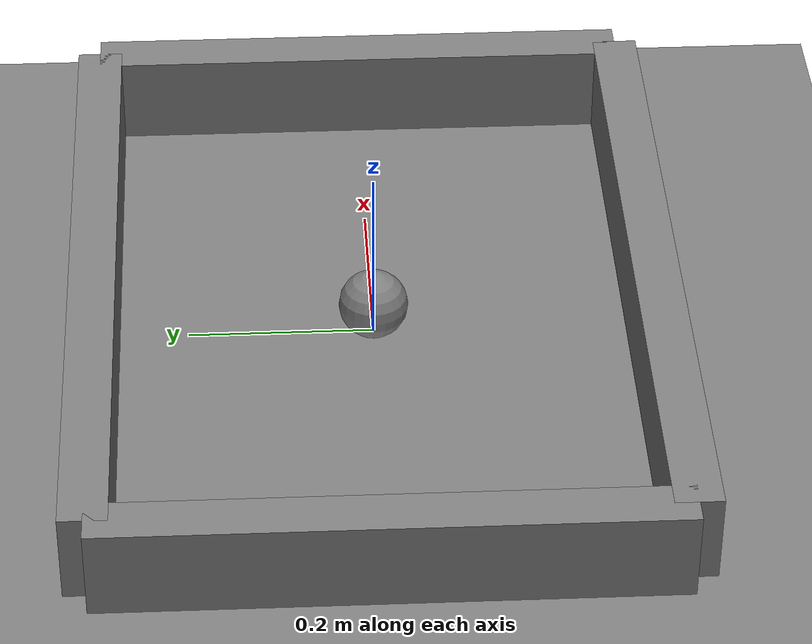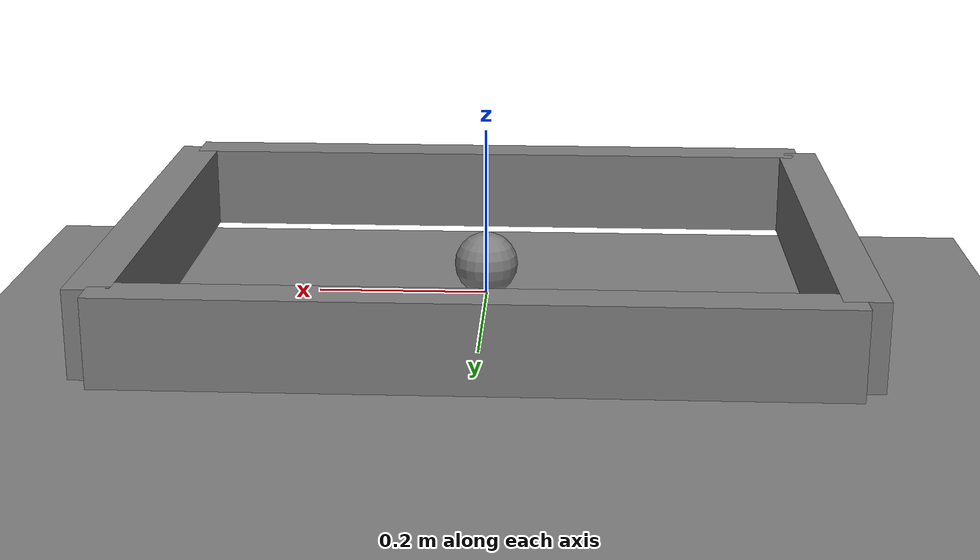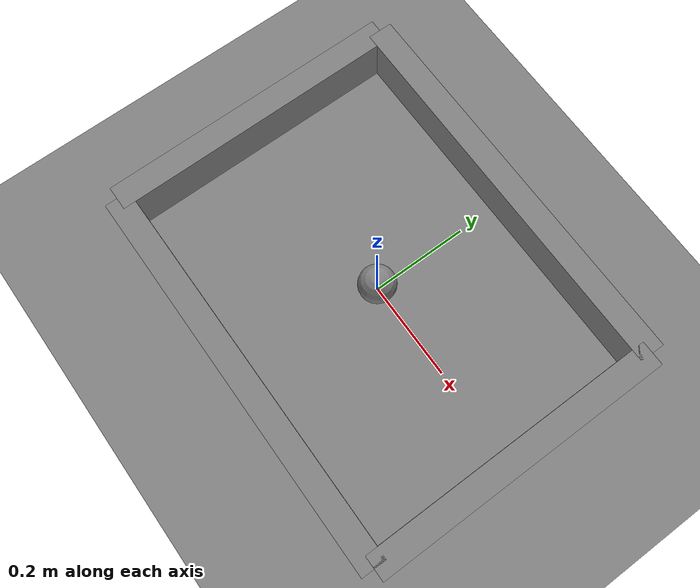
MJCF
<?xml version="1.0" ?>
<!--
MuJoCo scene for SpheroBolt+ rolling simulation in a box.

Box dimensions: 0.8m x 0.6m x 0.05m walls
SpheroBolt+ radius: 0.0375m (37.5mm)
Camera: top-down, centered above box
-->
<mujoco model="spherobolt_box">
  <compiler angle="degree" inertiafromgeom="true" />

  <!-- Global settings -->
  <option gravity="0 0 -9.81" timestep="0.001" />

  <!-- World body (static) -->
  <worldbody>
    <!-- Ground plane (below the box) -->
    <geom name="ground" type="plane" pos="0 0 -0.1" size="2 2 1" />

    <!-- Box arena walls (static bodies) -->
    <!-- Bottom plane (inside box floor) -->
    <body name="box_floor" pos="0 0 0">
      <geom name="floor_geom" type="plane" pos="0 0 0" size="0.4 0.3 1" />
    </body>

    <!-- Four walls -->
    <!-- Front wall (y = +0.3m) -->
    <body name="wall_front" pos="0 0.3 0.05">
      <geom name="wall_front_geom" type="box" pos="0 0 0" size="0.4 0.025 0.05" />
    </body>

    <!-- Back wall (y = -0.3m) -->
    <body name="wall_back" pos="0 -0.3 0.05">
      <geom name="wall_back_geom" type="box" pos="0 0 0" size="0.4 0.025 0.05" />
    </body>

    <!-- Right wall (x = +0.4m) -->
    <body name="wall_right" pos="0.4 0 0.05">
      <geom name="wall_right_geom" type="box" pos="0 0 0" size="0.025 0.3 0.05" />
    </body>

    <!-- Left wall (x = -0.4m) -->
    <body name="wall_left" pos="-0.4 0 0.05">
      <geom name="wall_left_geom" type="box" pos="0 0 0" size="0.025 0.3 0.05" />
    </body>

    <!-- SpheroBolt+ sphere (dynamic body) -->
    <body name="sphere" pos="0 0 0.0375">
      <joint name="sphere_x" type="slide" pos="0 0 0" axis="1 0 0" damping="0.1" />
      <joint name="sphere_y" type="slide" pos="0 0 0" axis="0 1 0" damping="0.1" />
      <joint name="sphere_z" type="slide" pos="0 0 0" axis="0 0 1" damping="0.01" />
      <joint name="sphere_rot_x" type="hinge" pos="0 0 0" axis="1 0 0" damping="0.01" />
      <joint name="sphere_rot_y" type="hinge" pos="0 0 0" axis="0 1 0" damping="0.01" />
      <joint name="sphere_rot_z" type="hinge" pos="0 0 0" axis="0 0 1" damping="0.01" />
      <geom name="sphere_geom" type="sphere" size="0.0375" mass="0.12"
             friction="1.0 0.1 0.1" />
    </body>

    <!-- Camera: top-down view centered on box -->
    <camera name="top_camera" mode="fixed" pos="0 0 0.7" xyaxes="1 0 0 0 1 0" />
  </worldbody>

  <!-- Actuators for controlling sphere motion -->
  <actuator>
    <!-- Velocity control for x-axis -->
    <velocity name="sphere_vx" joint="sphere_x" kv="10" />
    <!-- Velocity control for y-axis -->
    <velocity name="sphere_vy" joint="sphere_y" kv="10" />
  </actuator>
</mujoco>
